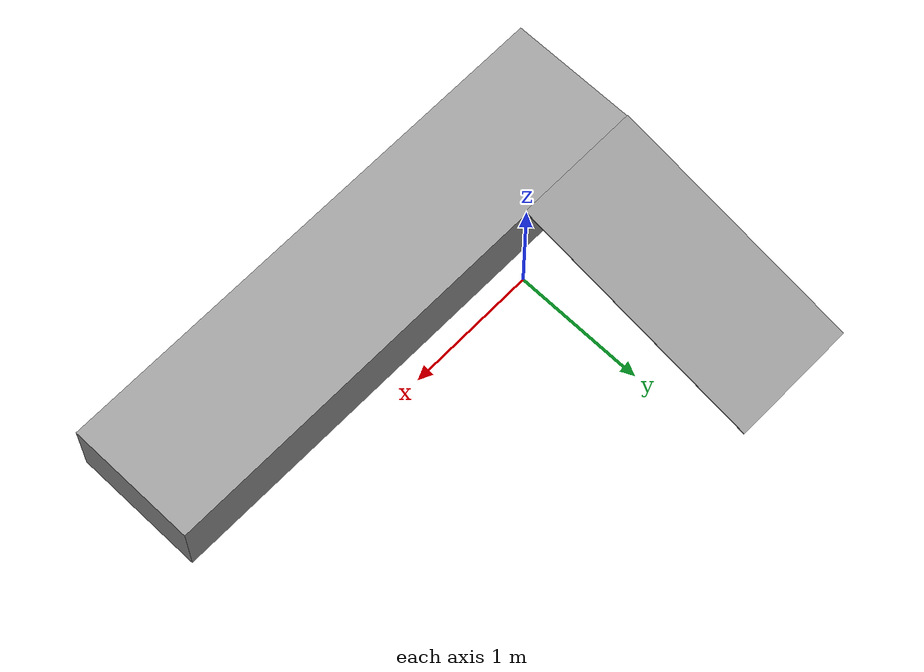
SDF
<?xml version='1.0'?>
<sdf version='1.7'>
  <model name='tabel3'>
    <link name='link_0'>
      <inertial>
        <mass>2.10991</mass>
        <inertia>
          <ixx>0.222089</ixx>
          <ixy>0</ixy>
          <ixz>0</ixz>
          <iyy>3.0209</iyy>
          <iyz>0</iyz>
          <izz>3.15046</izz>
        </inertia>
        <pose>0 0 0 0 -0 0</pose>
      </inertial>
      <pose>0.7778 -0.739059 -0.007772 0 -0 0</pose>
      <visual name='visual'>
        <pose>0 0 0 0 -0 0</pose>
        <geometry>
          <box>
            <size>4.11316 1 0.512955</size>
          </box>
        </geometry>
        <material>
          <lighting>1</lighting>
          <script>
            <uri>file://media/materials/scripts/gazebo.material</uri>
            <name>Gazebo/Grey</name>
          </script>
          <shader type='pixel'/>
          <emissive>0 0 0 1</emissive>
        </material>
        <transparency>0</transparency>
        <cast_shadows>1</cast_shadows>
      </visual>
      <collision name='collision'>
        <laser_retro>0</laser_retro>
        <max_contacts>10</max_contacts>
        <pose>0 0 0 0 -0 0</pose>
        <geometry>
          <box>
            <size>4.11316 1 0.512955</size>
          </box>
        </geometry>
        <surface>
          <friction>
            <ode>
              <mu>1</mu>
              <mu2>1</mu2>
              <fdir1>0 0 0</fdir1>
              <slip1>0</slip1>
              <slip2>0</slip2>
            </ode>
            <torsional>
              <coefficient>1</coefficient>
              <patch_radius>0</patch_radius>
              <surface_radius>0</surface_radius>
              <use_patch_radius>1</use_patch_radius>
              <ode>
                <slip>0</slip>
              </ode>
            </torsional>
          </friction>
          <bounce>
            <restitution_coefficient>0</restitution_coefficient>
            <threshold>1e+06</threshold>
          </bounce>
          <contact>
            <collide_without_contact>0</collide_without_contact>
            <collide_without_contact_bitmask>1</collide_without_contact_bitmask>
            <collide_bitmask>1</collide_bitmask>
            <ode>
              <soft_cfm>0</soft_cfm>
              <soft_erp>0.2</soft_erp>
              <kp>1e+13</kp>
              <kd>1</kd>
              <max_vel>0.01</max_vel>
              <min_depth>0</min_depth>
            </ode>
            <bullet>
              <split_impulse>1</split_impulse>
              <split_impulse_penetration_threshold>-0.01</split_impulse_penetration_threshold>
              <soft_cfm>0</soft_cfm>
              <soft_erp>0.2</soft_erp>
              <kp>1e+13</kp>
              <kd>1</kd>
            </bullet>
          </contact>
        </surface>
      </collision>
    </link>
    <link name='link_1'>
      <inertial>
        <mass>0.0192661</mass>
        <inertia>
          <ixx>0.00674394</ixx>
          <ixy>0</ixy>
          <ixz>0</ixz>
          <iyy>0.00160565</iyy>
          <iyz>0</iyz>
          <izz>0.0083493</izz>
        </inertia>
        <pose>0 0 0 0 -0 0</pose>
      </inertial>
      <pose>-0.777797 0.739065 0.007773 -0.249312 0 0</pose>
      <visual name='visual'>
        <pose>0 0 0 0 -0 0</pose>
        <geometry>
          <box>
            <size>1 2.04949 0.009481</size>
          </box>
        </geometry>
        <material>
          <lighting>1</lighting>
          <script>
            <uri>file://media/materials/scripts/gazebo.material</uri>
            <name>Gazebo/Grey</name>
          </script>
          <shader type='pixel'/>
          <emissive>0 0 0 1</emissive>
        </material>
        <transparency>0</transparency>
        <cast_shadows>1</cast_shadows>
      </visual>
      <collision name='collision'>
        <laser_retro>0</laser_retro>
        <max_contacts>10</max_contacts>
        <pose>0 0 0 0 -0 0</pose>
        <geometry>
          <box>
            <size>1 2.04949 0.009481</size>
          </box>
        </geometry>
        <surface>
          <friction>
            <ode>
              <mu>1</mu>
              <mu2>1</mu2>
              <fdir1>0 0 0</fdir1>
              <slip1>0</slip1>
              <slip2>0</slip2>
            </ode>
            <torsional>
              <coefficient>1</coefficient>
              <patch_radius>0</patch_radius>
              <surface_radius>0</surface_radius>
              <use_patch_radius>1</use_patch_radius>
              <ode>
                <slip>0</slip>
              </ode>
            </torsional>
          </friction>
          <bounce>
            <restitution_coefficient>0</restitution_coefficient>
            <threshold>1e+06</threshold>
          </bounce>
          <contact>
            <collide_without_contact>0</collide_without_contact>
            <collide_without_contact_bitmask>1</collide_without_contact_bitmask>
            <collide_bitmask>1</collide_bitmask>
            <ode>
              <soft_cfm>0</soft_cfm>
              <soft_erp>0.2</soft_erp>
              <kp>1e+13</kp>
              <kd>1</kd>
              <max_vel>0.01</max_vel>
              <min_depth>0</min_depth>
            </ode>
            <bullet>
              <split_impulse>1</split_impulse>
              <split_impulse_penetration_threshold>-0.01</split_impulse_penetration_threshold>
              <soft_cfm>0</soft_cfm>
              <soft_erp>0.2</soft_erp>
              <kp>1e+13</kp>
              <kd>1</kd>
            </bullet>
          </contact>
        </surface>
      </collision>
    </link>
    <joint name='link_0_JOINT_0' type='fixed'>
      <parent>link_0</parent>
      <child>link_1</child>
      <pose>0 0 0 0 -0 0</pose>
      <physics>
        <ode>
          <limit>
            <cfm>0</cfm>
            <erp>0.2</erp>
          </limit>
          <suspension>
            <cfm>0</cfm>
            <erp>0.2</erp>
          </suspension>
        </ode>
      </physics>
    </joint>
    <static>0</static>
    <allow_auto_disable>1</allow_auto_disable>
  </model>
</sdf>
